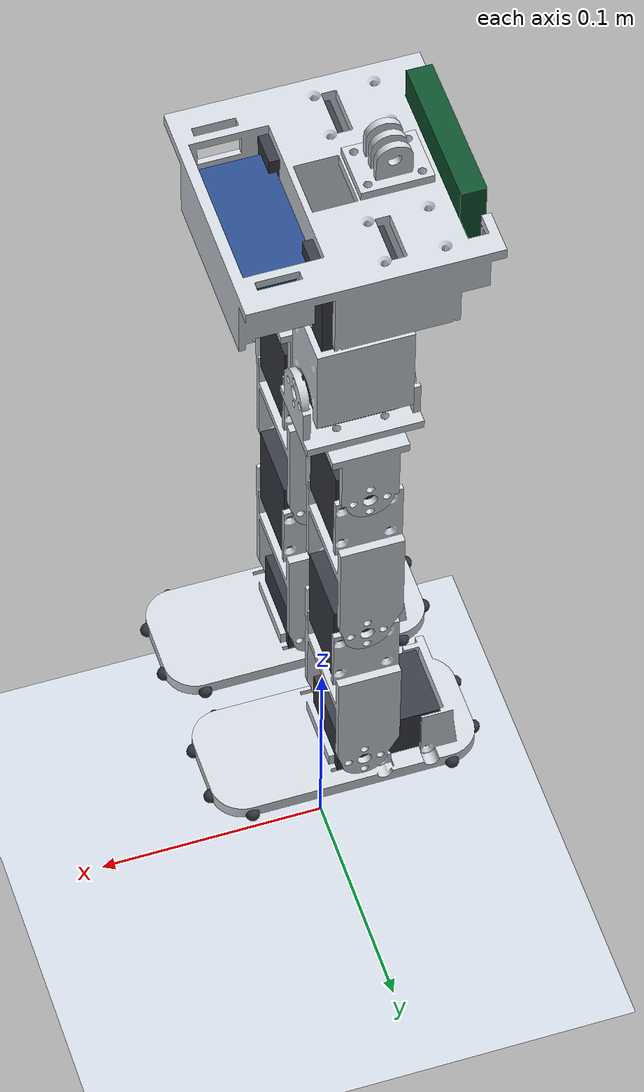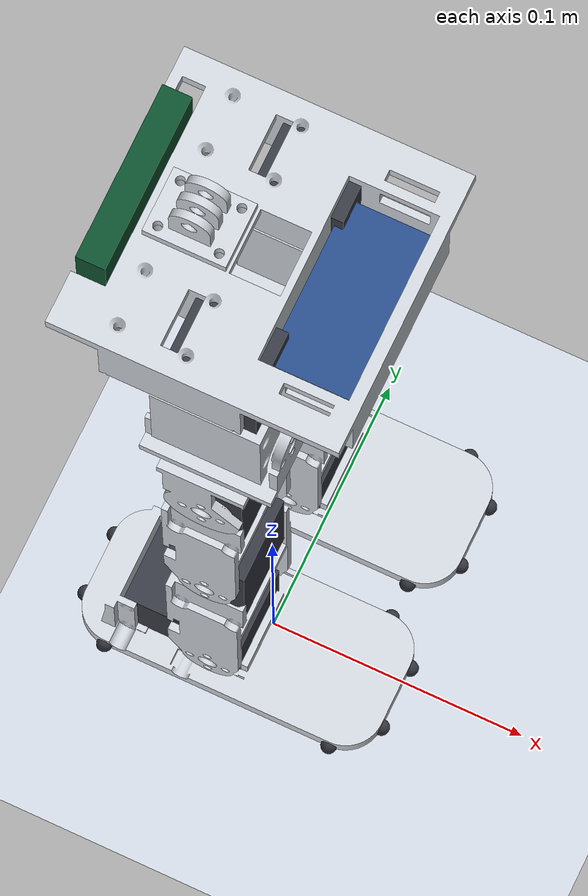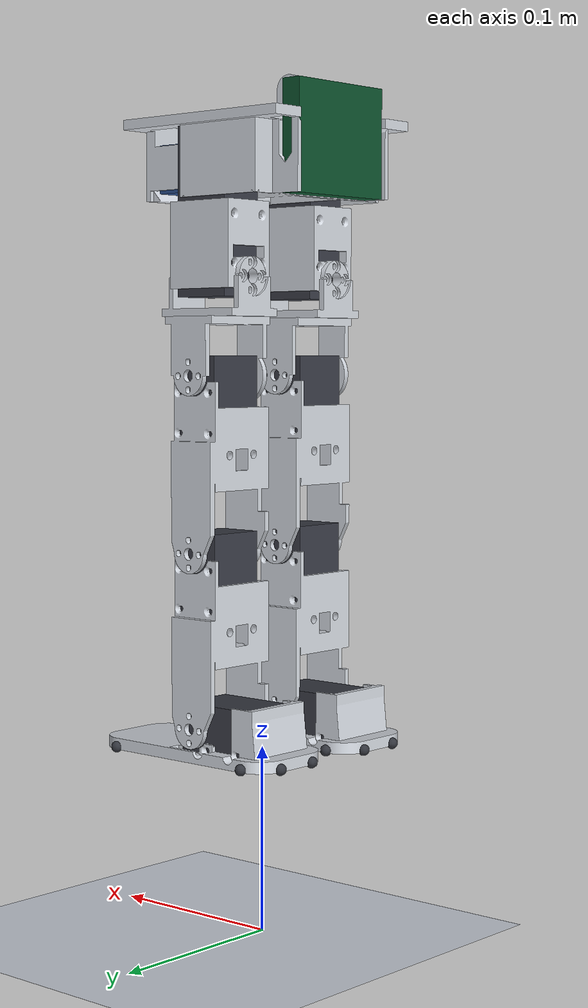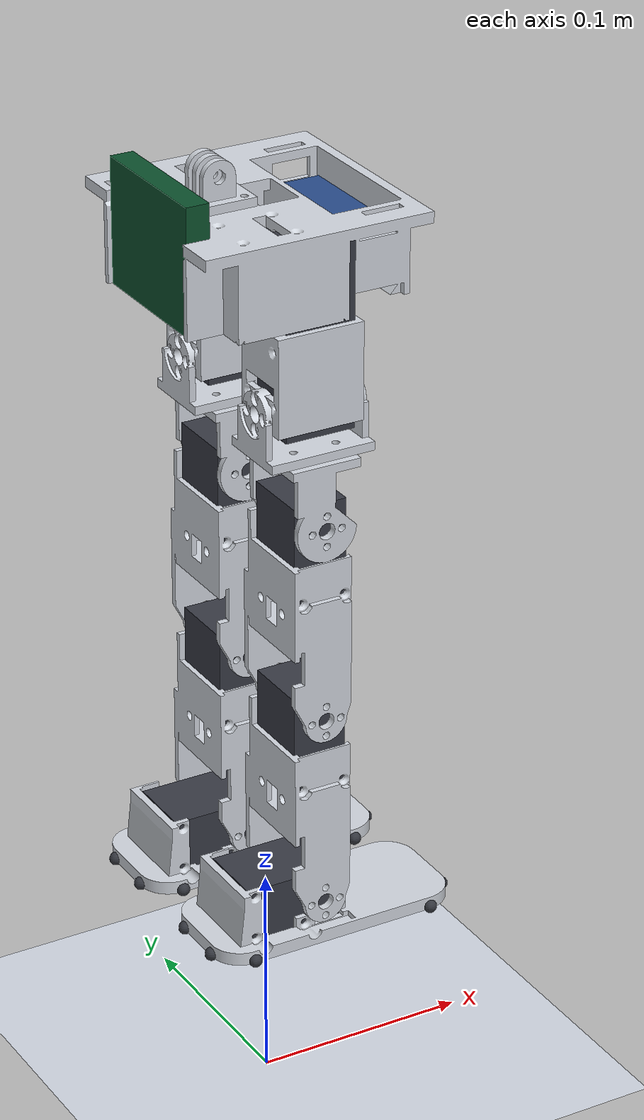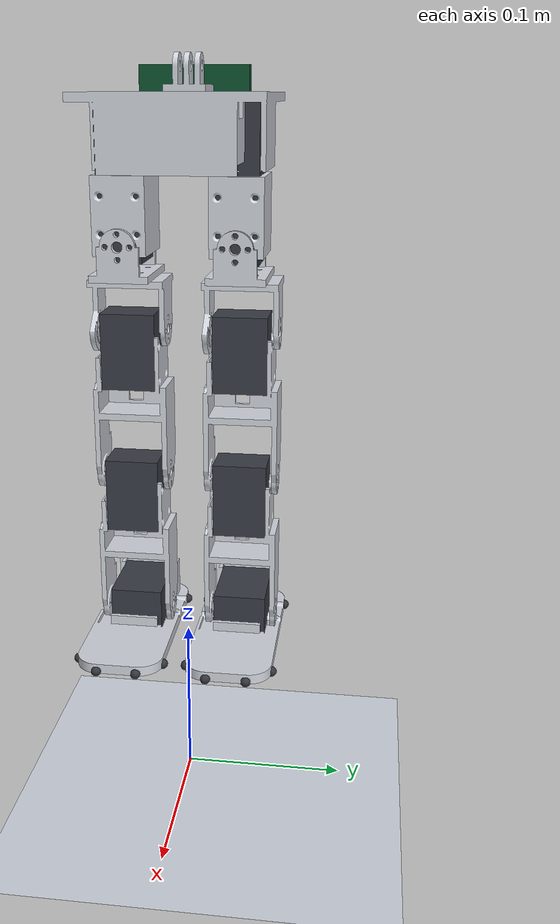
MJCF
<mujoco model="bimo_like_biped_v2">
  <compiler angle="degree" autolimits="true" meshdir="../cad/stl"/>
  <option timestep="0.002" gravity="0 0 -9.81" integrator="implicitfast"/>

  <visual>
    <global offwidth="900" offheight="1100"/>
    <headlight diffuse="0.7 0.7 0.7" ambient="0.35 0.35 0.35"/>
  </visual>

  <default>
    <joint type="hinge" damping="0.6" armature="0.008" frictionloss="0.02" limited="true"/>
    <position kp="40" forcerange="-3 3"/>          <!-- STS3215 ~2.9 N*m stall -->
    <geom contype="0" conaffinity="0"/>            <!-- internal parts don't self-collide -->
    <default class="cad">
      <geom type="mesh" contype="2" conaffinity="0" group="1" rgba="0.82 0.84 0.87 1"/>
    </default>
    <default class="cadvis">
      <geom type="mesh" contype="0" conaffinity="0" group="1" rgba="0.82 0.84 0.87 1"/>
    </default>
    <default class="servo">
      <geom contype="2" conaffinity="0" group="1" rgba="0.22 0.23 0.27 1"/>
    </default>
    <default class="pad">
      <geom type="sphere" size="0.003" contype="1" conaffinity="0" mass="0"
            friction="1 0.02 0.001" condim="4" rgba="0.20 0.21 0.24 1"/>
    </default>
    <default class="legcol">
      <geom type="capsule" size="0.0147" contype="0" conaffinity="0" mass="0"
            group="4" rgba="0.85 0.35 0.25 0.30"/>
    </default>
  </default>

  <asset>
    <!-- checker floor: the render camera tracks the torso, so an untextured
         plane makes the dash look like running in place -->
    <texture name="grid" type="2d" builtin="checker" rgb1="0.87 0.89 0.92"
             rgb2="0.77 0.80 0.85" width="512" height="512"/>
    <material name="floor_mat" texture="grid" texrepeat="24 24" texuniform="true"/>
    <mesh name="pelvis"     file="pelvis.stl"     scale="0.001 0.001 0.001"/>
    <mesh name="gopro_base" file="gopro_base.stl" scale="0.001 0.001 0.001"/>
    <mesh name="yoke_roll"  file="yoke_roll.stl"  scale="0.001 0.001 0.001"/>
    <mesh name="yoke_pitch" file="yoke_pitch.stl" scale="0.001 0.001 0.001"/>
    <mesh name="leg_link"   file="leg_link.stl"   scale="0.001 0.001 0.001"/>
    <mesh name="foot"       file="foot.stl"               scale="0.001 0.001 0.001"/>
    <mesh name="yaw_carrier" file="yaw_carrier.stl" scale="0.001 0.001 0.001"/>
  </asset>

  <worldbody>
    <light pos="0.6 0.4 1.5" dir="-0.4 -0.3 -1" directional="true"/>
    <geom name="floor" type="plane" size="3 3 0.1" contype="1" conaffinity="3"
          material="floor_mat" friction="1 0.02 0.001" condim="4"/>

    <body name="torso" pos="0 0 0.424">   <!-- +0.041 m: YAW_STACK_DROP 40.8 mm -->
      <freejoint/>
      <inertial pos="-0.0002 -0.0001 -0.0153" quat="0.9930 0.0071 0.0802 0.0859" mass="0.3615" diaginertia="3.4391e-04 3.5487e-04 5.5915e-04"/>
      <geom name="torso" type="box" size="0.054 0.052 0.038" mass="0.3618" rgba="0.80 0.82 0.85 1" group="3"/>
      <geom class="cad" mesh="pelvis" pos="0 0 0.00411"/>
      <geom class="cad" mesh="gopro_base" pos="-0.024 0 0.00411"/>  <!-- GP_MOUNT_X, bolted flat to the deck -->

      <geom name="servo_L_roll" class="servo" type="box" pos="0.0013 0.033 -0.02346" size="0.01605 0.01236 0.02261"/>
      <geom name="servo_R_roll" class="servo" type="box" pos="0.0013 -0.033 -0.02346" size="0.01605 0.01236 0.02261"/>
      <!-- pack no longer sits ON the deck: it drops through the aperture into
           the bay and rests in the 47 deg seat V (BT_*), which is why it is
           now BELOW the origin instead of above it. -->
      <geom name="battery" type="box" pos="0.02921 0 -0.02018" size="0.015 0.031 0.0125"
            group="1" rgba="0.16 0.30 0.55 1"/>
      <geom name="board" type="box" pos="-0.04733 0 -0.00889" size="0.005315 0.032505 0.028005"
            group="1" rgba="0.05 0.32 0.18 1"/>
      <site name="imu" pos="-0.04201 0 -0.00889"/>

      <!-- ================= LEFT LEG ================= -->
      <body name="L_hip_yaw" pos="0 0.033 -0.036">
        <joint name="L_hip_yaw" axis="0 0 1" range="-45 45"/>
        <geom name="carrier_L" type="box" pos="0 0 -0.022" size="0.0125 0.0225 0.0175" mass="0.0775" group="3" rgba="0.22 0.23 0.27 1"/>
        <!-- visual-only (cadvis + mass 0: no collision/inertia change vs the
             plant the night-3 policies trained on) -- the carrier segment
             rendered as a floating gap before -->
        <geom class="cadvis" mesh="yaw_carrier" pos="0 0 -0.0029" mass="0"/>
        <geom type="box" pos="0.0013 0 -0.0285" size="0.01605 0.01236 0.02261" group="1" rgba="0.22 0.23 0.27 1" mass="0"/>
      <body name="L_hip" pos="0 0 -0.041">
        <joint name="L_hip_roll" axis="1 0 0" range="-25 55"/>
        <inertial pos="-0.0005 0.0006 -0.0220" quat="0.9503 -0.2086 0.0257 0.2299" mass="0.0296" diaginertia="1.0758e-05 1.1227e-05 1.0507e-05"/>
        <geom type="box" pos="0 0 -0.025" size="0.0175 0.0123 0.025" mass="0.029" rgba="0.22 0.23 0.27 1" group="3"/>
        <geom class="cad" mesh="yoke_roll"/>
        <geom class="cad" mesh="yoke_pitch" pos="0 0 -0.05"/>
        <body name="L_thigh" pos="0 0 -0.05">
          <joint name="L_hip_pitch" axis="0 1 0" range="-110 90"/>
        <inertial pos="-0.0010 0.0016 -0.0242" quat="0.9999 0.0031 0.0153 0.0020" mass="0.0786" diaginertia="5.5586e-05 4.8599e-05 1.6317e-05"/>
          <geom type="box" pos="0 0 -0.045" size="0.0175 0.0123 0.045" mass="0.077" rgba="0.24 0.25 0.29 1" group="3"/>
          <geom class="cad" mesh="leg_link"/>
          <geom class="servo" type="box" pos="0 0.0013 -0.0125" size="0.01236 0.01605 0.02261"/>
          <geom name="L_col_thigh" class="legcol" fromto="0 0 0 0 0 -0.030"/>
          <body name="L_shin" pos="0 0 -0.09">
            <joint name="L_knee" axis="0 -1 0" range="-95 95"/>
        <inertial pos="-0.0010 0.0016 -0.0242" quat="0.9999 0.0031 0.0153 0.0020" mass="0.0786" diaginertia="5.5586e-05 4.8599e-05 1.6317e-05"/>
            <geom type="box" pos="0 0 -0.045" size="0.0175 0.0123 0.045" mass="0.077" rgba="0.24 0.25 0.29 1" group="3"/>
          <geom class="cad" mesh="leg_link"/>
          <geom class="servo" type="box" pos="0 0.0013 -0.0125" size="0.01236 0.01605 0.02261"/>
            <geom name="L_col_shank" class="legcol" fromto="0 0 0 0 0 -0.030"/>
            <body name="L_foot" pos="0 0 -0.09">
              <joint name="L_ankle" axis="0 1 0" range="-40 40"/>
        <inertial pos="-0.0046 0.0007 -0.0063" quat="0.9979 0.0225 0.0604 -0.0063" mass="0.1104" diaginertia="2.3884e-05 9.0301e-05 9.8561e-05"/>
              <geom name="L_pad_hl" class="pad" pos="-0.052 +0.012 -0.015"/>
              <geom name="L_pad_hr" class="pad" pos="-0.052 -0.012 -0.015"/>
              <geom name="L_pad_hol" class="pad" pos="-0.038 +0.026 -0.015"/>
              <geom name="L_pad_hor" class="pad" pos="-0.038 -0.026 -0.015"/>
              <geom name="L_pad_tol" class="pad" pos="+0.050 +0.026 -0.015"/>
              <geom name="L_pad_tor" class="pad" pos="+0.050 -0.026 -0.015"/>
              <geom name="L_pad_tl" class="pad" pos="+0.064 +0.012 -0.015"/>
              <geom name="L_pad_tr" class="pad" pos="+0.064 -0.012 -0.015"/>
              <geom name="L_sole" type="box" pos="0.010 0 -0.0140" size="0.045 0.023 0.004"
                    contype="0" conaffinity="0" group="3" mass="0.1104" rgba="0.20 0.21 0.24 1" friction="1 0.02 0.001" condim="4"/>
              <geom name="L_col_foot" type="box" pos="0.006 0 -0.012" size="0.058 0.026 0.006"
                    contype="0" conaffinity="0" group="3" mass="0" friction="1 0.02 0.001" condim="4"/>
              <geom class="cadvis" mesh="foot" pos="0 0 -0.01636"/>
              <geom class="servo" type="box" pos="-0.0125 0.0013 0" size="0.02261 0.01605 0.01236"/>
            </body>
          </body>
        </body>
      </body>
      </body>   <!-- L_hip_yaw -->

      <!-- ================= RIGHT LEG ================= -->
      <body name="R_hip_yaw" pos="0 -0.033 -0.036">
        <joint name="R_hip_yaw" axis="0 0 1" range="-45 45"/>
        <geom name="carrier_R" type="box" pos="0 0 -0.022" size="0.0125 0.0225 0.0175" mass="0.0775" group="3" rgba="0.22 0.23 0.27 1"/>
        <!-- visual-only (cadvis + mass 0: no collision/inertia change vs the
             plant the night-3 policies trained on) -- the carrier segment
             rendered as a floating gap before -->
        <geom class="cadvis" mesh="yaw_carrier" pos="0 0 -0.0029" mass="0"/>
        <geom type="box" pos="0.0013 0 -0.0285" size="0.01605 0.01236 0.02261" group="1" rgba="0.22 0.23 0.27 1" mass="0"/>
      <body name="R_hip" pos="0 0 -0.041">
        <!-- mirror of L_hip_roll: NEGATIVE roll is this leg's abduction, so
             the CAD-verified 55 deg lands on the low side. -->
        <joint name="R_hip_roll" axis="1 0 0" range="-55 25"/>
        <inertial pos="-0.0005 0.0006 -0.0220" quat="0.9503 -0.2086 0.0257 0.2299" mass="0.0296" diaginertia="1.0758e-05 1.1227e-05 1.0507e-05"/>
        <geom type="box" pos="0 0 -0.025" size="0.0175 0.0123 0.025" mass="0.029" rgba="0.22 0.23 0.27 1" group="3"/>
        <geom class="cad" mesh="yoke_roll"/>
        <geom class="cad" mesh="yoke_pitch" pos="0 0 -0.05"/>
        <body name="R_thigh" pos="0 0 -0.05">
          <!-- +90 backward, mirror of L_hip_pitch (see there) -->
          <joint name="R_hip_pitch" axis="0 1 0" range="-110 90"/>
        <inertial pos="-0.0010 0.0016 -0.0242" quat="0.9999 0.0031 0.0153 0.0020" mass="0.0786" diaginertia="5.5586e-05 4.8599e-05 1.6317e-05"/>
          <geom type="box" pos="0 0 -0.045" size="0.0175 0.0123 0.045" mass="0.077" rgba="0.24 0.25 0.29 1" group="3"/>
          <geom class="cad" mesh="leg_link"/>
          <geom class="servo" type="box" pos="0 0.0013 -0.0125" size="0.01236 0.01605 0.02261"/>
          <geom name="R_col_thigh" class="legcol" fromto="0 0 0 0 0 -0.030"/>
          <body name="R_shin" pos="0 0 -0.09">
            <!-- axis -Y: flexion-negative, mirror of L_knee (see the comment
                 there for the 2026-08-02 sign fix and the range rationale) -->
            <joint name="R_knee" axis="0 -1 0" range="-95 95"/>
        <inertial pos="-0.0010 0.0016 -0.0242" quat="0.9999 0.0031 0.0153 0.0020" mass="0.0786" diaginertia="5.5586e-05 4.8599e-05 1.6317e-05"/>
            <geom type="box" pos="0 0 -0.045" size="0.0175 0.0123 0.045" mass="0.077" rgba="0.24 0.25 0.29 1" group="3"/>
          <geom class="cad" mesh="leg_link"/>
          <geom class="servo" type="box" pos="0 0.0013 -0.0125" size="0.01236 0.01605 0.02261"/>
            <geom name="R_col_shank" class="legcol" fromto="0 0 0 0 0 -0.030"/>
            <body name="R_foot" pos="0 0 -0.09">
              <joint name="R_ankle" axis="0 1 0" range="-40 40"/>
        <inertial pos="-0.0046 0.0007 -0.0063" quat="0.9979 0.0225 0.0604 -0.0063" mass="0.1104" diaginertia="2.3884e-05 9.0301e-05 9.8561e-05"/>
              <!-- mirror of the left foot; see the L_pad_* comment above -->
              <geom name="R_pad_hl" class="pad" pos="-0.052 +0.012 -0.015"/>
              <geom name="R_pad_hr" class="pad" pos="-0.052 -0.012 -0.015"/>
              <geom name="R_pad_hol" class="pad" pos="-0.038 +0.026 -0.015"/>
              <geom name="R_pad_hor" class="pad" pos="-0.038 -0.026 -0.015"/>
              <geom name="R_pad_tol" class="pad" pos="+0.050 +0.026 -0.015"/>
              <geom name="R_pad_tor" class="pad" pos="+0.050 -0.026 -0.015"/>
              <geom name="R_pad_tl" class="pad" pos="+0.064 +0.012 -0.015"/>
              <geom name="R_pad_tr" class="pad" pos="+0.064 -0.012 -0.015"/>
              <geom name="R_col_foot" type="box" pos="0.006 0 -0.012" size="0.058 0.026 0.006"
                    contype="0" conaffinity="0" group="3" mass="0" friction="1 0.02 0.001" condim="4"/>
              <geom name="R_sole" type="box" pos="0.010 0 -0.0140" size="0.045 0.023 0.004"
                    contype="0" conaffinity="0" group="3" mass="0.1104" rgba="0.20 0.21 0.24 1" friction="1 0.02 0.001" condim="4"/>
              <geom class="cadvis" mesh="foot" pos="0 0 -0.01636"/>
              <geom class="servo" type="box" pos="-0.0125 0.0013 0" size="0.02261 0.01605 0.01236"/>
            </body>
          </body>
        </body>
      </body>
      </body>   <!-- R_hip_yaw -->
    </body>
  </worldbody>

  <actuator>
    <position name="L_hip_yaw"   joint="L_hip_yaw"   ctrlrange="-0.7853981634  0.7853981634"/>
    <position name="L_hip_roll"  joint="L_hip_roll"  ctrlrange="-0.4363323130 0.9599310886"/>  <!-- -25 .. +55 abduction, measured -->
    <position name="L_hip_pitch" joint="L_hip_pitch" ctrlrange="-1.9198621772 1.5707963268"/>  <!-- -110 .. +90 backward, verified -->
    <position name="L_knee"      joint="L_knee"      ctrlrange="-1.6580627894 1.6580627894"/>  <!-- -95 .. +95 measured 2026-08-02 -->
    <position name="L_ankle"     joint="L_ankle"     ctrlrange="-0.6981317008  0.6981317008"/>
    <position name="R_hip_yaw"   joint="R_hip_yaw"   ctrlrange="-0.7853981634  0.7853981634"/>
    <position name="R_hip_roll"  joint="R_hip_roll"  ctrlrange="-0.9599310886 0.4363323130"/>  <!-- -55 .. +25 abduction, measured -->
    <position name="R_hip_pitch" joint="R_hip_pitch" ctrlrange="-1.9198621772 1.5707963268"/>  <!-- -110 .. +90 backward, verified -->
    <position name="R_knee"      joint="R_knee"      ctrlrange="-1.6580627894 1.6580627894"/>  <!-- -95 .. +95 measured 2026-08-02 -->
    <position name="R_ankle"     joint="R_ankle"     ctrlrange="-0.6981317008  0.6981317008"/>
  </actuator>

  <contact>
    <pair geom1="L_col_thigh" geom2="R_col_thigh"/>
    <pair geom1="L_col_thigh" geom2="R_col_shank"/>
    <pair geom1="L_col_shank" geom2="R_col_thigh"/>
    <pair geom1="L_col_shank" geom2="R_col_shank"/>
    <pair geom1="L_sole" geom2="R_sole"/>
    <pair geom1="L_sole" geom2="R_col_shank"/>
    <pair geom1="R_sole" geom2="L_col_shank"/>
    <pair geom1="L_col_foot" geom2="R_col_foot"/>
  </contact>

  <sensor>
    <framezaxis objtype="site" objname="imu" name="torso_up"/>
    <framepos   objtype="site" objname="imu" name="torso_pos"/>
  </sensor>

  <equality>
    <!-- HANGING variant (2026-08-30): torso welded to the world at
         stand height + 0.1 m, feet free -- the test-stand analogue
         for comparing sim behavior to the real bench. -->
    <weld body1="torso"/>
  </equality>
</mujoco>
